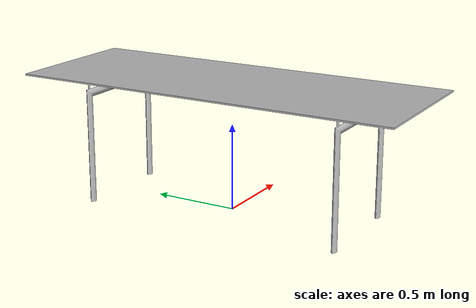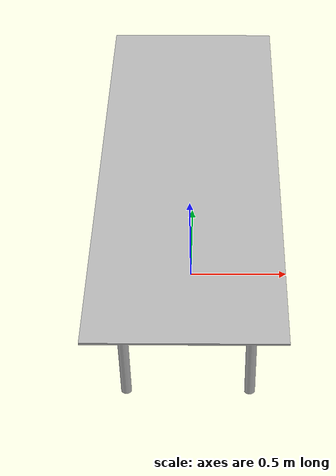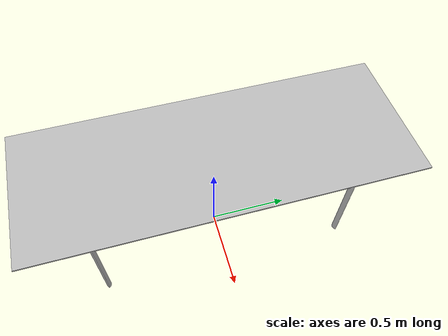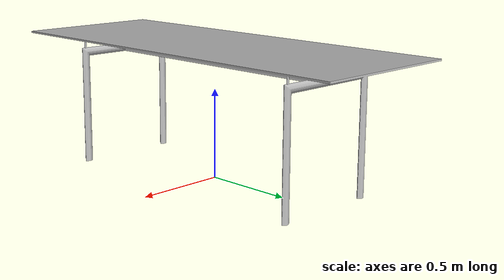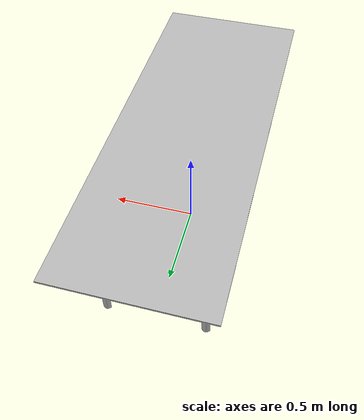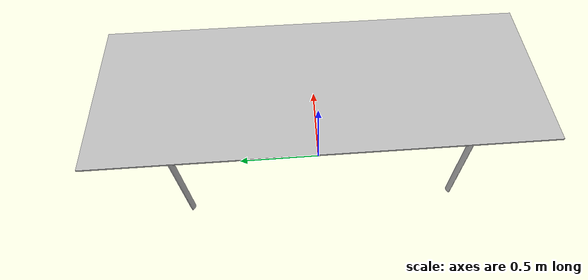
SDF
<?xml version='1.0'?>
<sdf version='1.4'>
  <model name='514'>
    <pose>0 0 0 0 0 0</pose>
    <static>true</static>
    <link name='link'>
      <collision name='collision'>
        <pose>0 0 0 0 0 0</pose>
        <geometry>
          <box>
            <size>0.85 2.25 2</size>
          </box>
        </geometry>
      </collision>
      <visual name='visual'>
        <pose>0 0 0 0 0 0</pose>
        <geometry>
          <mesh><uri>model://514/514.dae</uri></mesh>
        </geometry>
      </visual>
    </link>
  </model>
</sdf>
